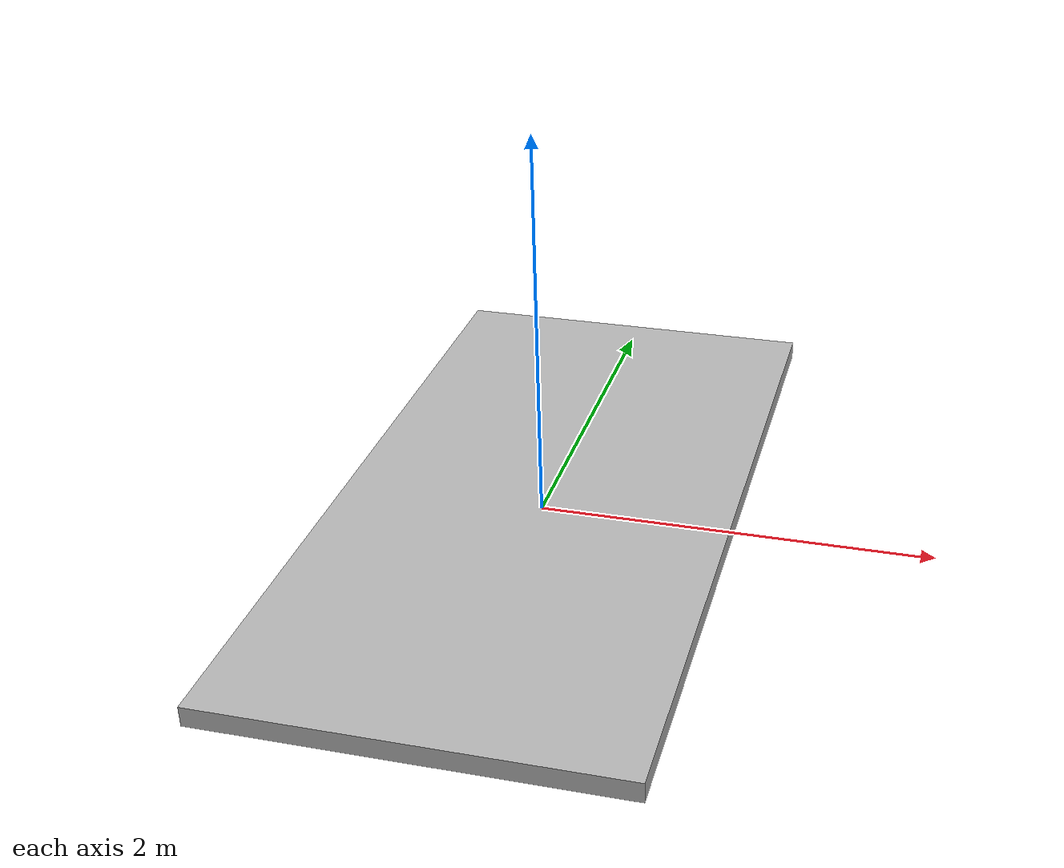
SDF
<?xml version="1.0" ?>
<sdf version="1.6">
  <model name="omni_stage">
    <static>true</static>
    <link name="link">
      <collision name="collision">
        <geometry>
          <mesh>
            <scale>1 1 1</scale>
            <uri>model://omni_stage/meshes/untitled.stl</uri>
          </mesh>
        </geometry>
      </collision>
      <visual name="visual">
        <geometry>
          <mesh>
            <scale>1 1 1</scale>
            <uri>model://omni_stage/meshes/untitled.dae</uri>
          </mesh>
        </geometry>
      </visual>
    </link>
  </model>
</sdf>
